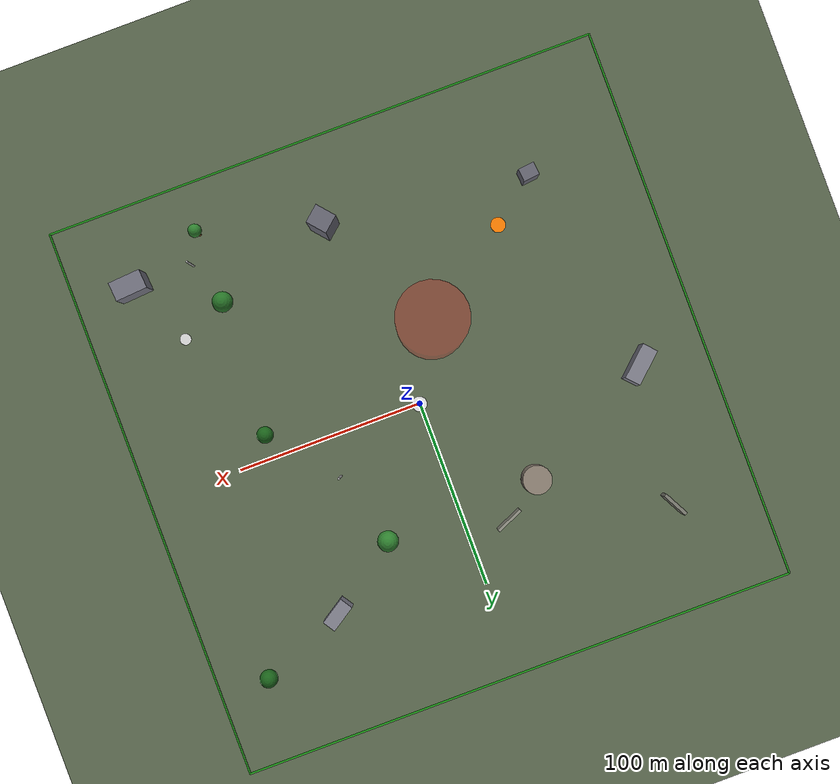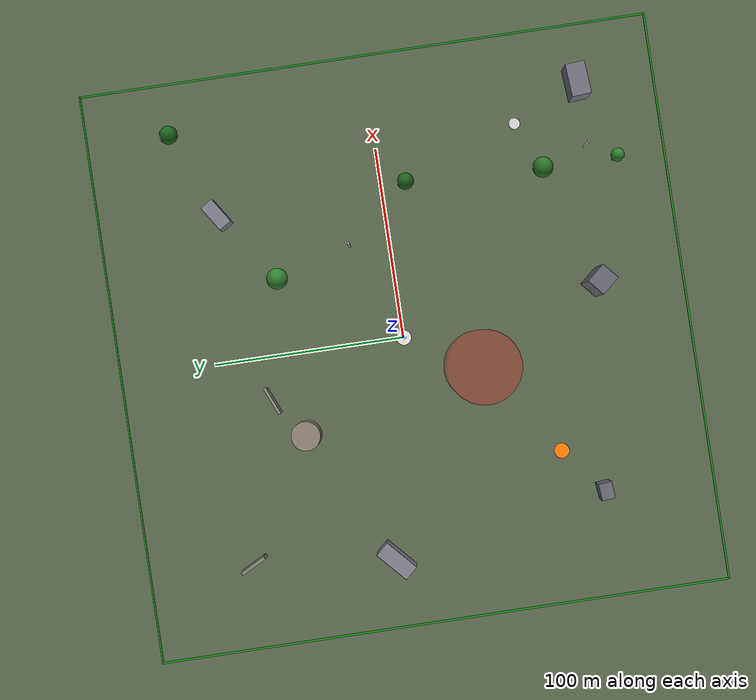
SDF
<?xml version="1.0" ?>
<sdf version="1.9">
  <!--
  Generated World: training_variant_001
  Seed: 43
  Difficulty: medium
  Obstacles: 15
  NFZs: 1
  Generated: 2025-12-27T10:39:35.526247
  Generator: Flyby F-11 World Generator v1.0.0
-->
  <world name="training_variant_001">
    <physics name="training_physics" type="ode">
      <max_step_size>0.001</max_step_size>
      <real_time_factor>1.0</real_time_factor>
      <real_time_update_rate>1000</real_time_update_rate>
      <ode>
        <solver>
          <type>quick</type>
          <iters>50</iters>
          <sor>1.3</sor>
        </solver>
        <constraints>
          <cfm>0.0</cfm>
          <erp>0.2</erp>
        </constraints>
      </ode>
    </physics>
    <plugin filename="gz-sim-physics-system" name="gz::sim::systems::Physics"/>
    <plugin filename="gz-sim-sensors-system" name="gz::sim::systems::Sensors">
      <render_engine>ogre2</render_engine>
    </plugin>
    <plugin filename="gz-sim-scene-broadcaster-system" name="gz::sim::systems::SceneBroadcaster"/>
    <plugin filename="gz-sim-user-commands-system" name="gz::sim::systems::UserCommands"/>
    <plugin filename="gz-sim-imu-system" name="gz::sim::systems::Imu"/>
    <plugin filename="gz-sim-air-pressure-system" name="gz::sim::systems::AirPressure"/>
    <plugin filename="gz-sim-magnetometer-system" name="gz::sim::systems::Magnetometer"/>
    <plugin filename="gz-sim-navsat-system" name="gz::sim::systems::NavSat"/>
    <plugin filename="gz-sim-contact-system" name="gz::sim::systems::Contact"/>
    <plugin filename="gz-sim-wind-effects-system" name="gz::sim::systems::WindEffects">
      <force_approximation_scaling_factor>1.0</force_approximation_scaling_factor>
    </plugin>
    <atmosphere type="adiabatic">
      <temperature>288.15</temperature>
      <pressure>101325</pressure>
      <mass_density>1.225</mass_density>
    </atmosphere>
    <wind>
      <linear_velocity>4.441189843562844 -0.8506739640705439 0</linear_velocity>
    </wind>
    <spherical_coordinates>
      <surface_model>EARTH_WGS84</surface_model>
      <world_frame_orientation>ENU</world_frame_orientation>
      <latitude_deg>33.3853</latitude_deg>
      <longitude_deg>-117.5653</longitude_deg>
      <elevation>100</elevation>
      <heading_deg>0</heading_deg>
    </spherical_coordinates>
    <scene>
      <ambient>0.4 0.35 0.35 1</ambient>
      <background>0.8 0.5 0.4 1</background>
      <shadows>true</shadows>
      <grid>false</grid>
    </scene>
    <light type="directional" name="sun">
      <cast_shadows>true</cast_shadows>
      <pose>0 0 100 0 0 0</pose>
      <diffuse>0.9 0.6 0.4 1</diffuse>
      <specular>0.2 0.1 0.1 1</specular>
      <attenuation>
        <range>1000</range>
        <constant>0.9</constant>
        <linear>0.01</linear>
        <quadratic>0.001</quadratic>
      </attenuation>
      <direction>-0.1 0.3 -0.3</direction>
    </light>
    <model name="ground_plane">
      <static>true</static>
      <link name="link">
        <collision name="collision">
          <geometry>
            <plane>
              <normal>0 0 1</normal>
              <size>500 500</size>
            </plane>
          </geometry>
          <surface>
            <friction>
              <ode>
                <mu>100</mu>
                <mu2>50</mu2>
              </ode>
            </friction>
          </surface>
        </collision>
        <visual name="visual">
          <geometry>
            <plane>
              <normal>0 0 1</normal>
              <size>500 500</size>
            </plane>
          </geometry>
          <material>
            <ambient>0.35 0.4 0.3 1</ambient>
            <diffuse>0.35 0.4 0.3 1</diffuse>
          </material>
        </visual>
      </link>
    </model>
    <model name="geofence_north">
      <static>true</static>
      <pose>0 150.0 1 0 0 0</pose>
      <link name="link">
        <visual name="visual">
          <geometry>
            <box>
              <size>300.0 0.5 2</size>
            </box>
          </geometry>
          <material>
            <ambient>0 0.8 0 0.6</ambient>
            <diffuse>0 0.8 0 0.6</diffuse>
            <emissive>0 0.2 0 1</emissive>
          </material>
        </visual>
      </link>
    </model>
    <model name="geofence_south">
      <static>true</static>
      <pose>0 -150.0 1 0 0 0</pose>
      <link name="link">
        <visual name="visual">
          <geometry>
            <box>
              <size>300.0 0.5 2</size>
            </box>
          </geometry>
          <material>
            <ambient>0 0.8 0 0.6</ambient>
            <diffuse>0 0.8 0 0.6</diffuse>
            <emissive>0 0.2 0 1</emissive>
          </material>
        </visual>
      </link>
    </model>
    <model name="geofence_east">
      <static>true</static>
      <pose>150.0 0 1 0 0 0</pose>
      <link name="link">
        <visual name="visual">
          <geometry>
            <box>
              <size>0.5 300.0 2</size>
            </box>
          </geometry>
          <material>
            <ambient>0 0.8 0 0.6</ambient>
            <diffuse>0 0.8 0 0.6</diffuse>
            <emissive>0 0.2 0 1</emissive>
          </material>
        </visual>
      </link>
    </model>
    <model name="geofence_west">
      <static>true</static>
      <pose>-150.0 0 1 0 0 0</pose>
      <link name="link">
        <visual name="visual">
          <geometry>
            <box>
              <size>0.5 300.0 2</size>
            </box>
          </geometry>
          <material>
            <ambient>0 0.8 0 0.6</ambient>
            <diffuse>0 0.8 0 0.6</diffuse>
            <emissive>0 0.2 0 1</emissive>
          </material>
        </visual>
      </link>
    </model>
    <model name="nfz_1_volume">
      <static>true</static>
      <pose>-20.485106862814575 -36.89388169723961 20.490195427352624 0 0 0</pose>
      <link name="link">
        <visual name="visual">
          <geometry>
            <cylinder>
              <radius>18.62708311302177</radius>
              <length>40.98039085470525</length>
            </cylinder>
          </geometry>
          <material>
            <ambient>1 0 0 0.25</ambient>
            <diffuse>1 0 0 0.25</diffuse>
          </material>
        </visual>
      </link>
    </model>
    <model name="obstacle_tree_0">
      <static>true</static>
      <pose>79.45565196014803 -12.696242450010942 0 0 0 0.0</pose>
      <link name="link">
        <visual name="trunk">
          <pose>0 0 5.014940292353301 0 0 0</pose>
          <geometry>
            <cylinder>
              <radius>0.5431799664186083</radius>
              <length>10.029880584706602</length>
            </cylinder>
          </geometry>
          <material>
            <ambient>0.42 0.27 0.12 1.0</ambient>
            <diffuse>0.42 0.27 0.12 1.0</diffuse>
          </material>
        </visual>
        <visual name="canopy">
          <pose>0 0 12.662438643398959 0 0 0</pose>
          <geometry>
            <sphere>
              <radius>4.387596764487263</radius>
            </sphere>
          </geometry>
          <material>
            <ambient>0.1 0.38 0.1 1.0</ambient>
            <diffuse>0.1 0.38 0.1 1.0</diffuse>
          </material>
        </visual>
        <collision name="collision">
          <pose>0 0 9.402537056840565 0 0 0</pose>
          <geometry>
            <cylinder>
              <radius>4.387596764487263</radius>
              <length>18.80507411368113</length>
            </cylinder>
          </geometry>
        </collision>
      </link>
    </model>
    <model name="obstacle_tree_1">
      <static>true</static>
      <pose>120.95901489345758 104.5660468445663 0 0 0 0.0</pose>
      <link name="link">
        <visual name="trunk">
          <pose>0 0 4.873529699123397 0 0 0</pose>
          <geometry>
            <cylinder>
              <radius>0.6542235615083326</radius>
              <length>9.747059398246794</length>
            </cylinder>
          </geometry>
          <material>
            <ambient>0.4 0.25 0.1 1.0</ambient>
            <diffuse>0.4 0.25 0.1 1.0</diffuse>
          </material>
        </visual>
        <visual name="canopy">
          <pose>0 0 12.584975774467038 0 0 0</pose>
          <geometry>
            <sphere>
              <radius>4.729860627033741</radius>
            </sphere>
          </geometry>
          <material>
            <ambient>0.1 0.38 0.1 1.0</ambient>
            <diffuse>0.1 0.38 0.1 1.0</diffuse>
          </material>
        </visual>
        <collision name="collision">
          <pose>0 0 9.603390326157138 0 0 0</pose>
          <geometry>
            <cylinder>
              <radius>4.729860627033741</radius>
              <length>19.206780652314276</length>
            </cylinder>
          </geometry>
        </collision>
      </link>
    </model>
    <model name="obstacle_building_2">
      <static>true</static>
      <pose>-94.01671455739128 -92.07749206749976 5.058690284898843 0 0 0.10108410353486122</pose>
      <link name="link">
        <visual name="visual">
          <geometry>
            <box>
              <size>8.692617343444399 6.965739200875013 10.117380569797685</size>
            </box>
          </geometry>
          <material>
            <ambient>0.4 0.4 0.45 1.0</ambient>
            <diffuse>0.4 0.4 0.45 1.0</diffuse>
          </material>
        </visual>
        <collision name="collision">
          <geometry>
            <box>
              <size>8.692617343444399 6.965739200875013 10.117380569797685</size>
            </box>
          </geometry>
        </collision>
      </link>
    </model>
    <model name="obstacle_building_3">
      <static>true</static>
      <pose>-113.5959555454755 20.630379561200783 5.545637322246016 0 0 0.7397693685057496</pose>
      <link name="link">
        <visual name="visual">
          <geometry>
            <box>
              <size>19.73840616703117 8.447424033108579 11.091274644492032</size>
            </box>
          </geometry>
          <material>
            <ambient>0.5 0.5 0.55 1.0</ambient>
            <diffuse>0.5 0.5 0.55 1.0</diffuse>
          </material>
        </visual>
        <collision name="collision">
          <geometry>
            <box>
              <size>19.73840616703117 8.447424033108579 11.091274644492032</size>
            </box>
          </geometry>
        </collision>
      </link>
    </model>
    <model name="obstacle_wall_4">
      <static>true</static>
      <pose>-105.41555763779496 94.45565392460196 4.566758184660719 0 0 2.054562385048423</pose>
      <link name="link">
        <visual name="visual">
          <geometry>
            <box>
              <size>14.44239675349884 1.8887522747892507 9.133516369321438</size>
            </box>
          </geometry>
          <material>
            <ambient>0.48 0.48 0.44 1.0</ambient>
            <diffuse>0.48 0.48 0.44 1.0</diffuse>
          </material>
        </visual>
        <collision name="collision">
          <geometry>
            <box>
              <size>14.44239675349884 1.8887522747892507 9.133516369321438</size>
            </box>
          </geometry>
        </collision>
      </link>
    </model>
    <model name="obstacle_tree_5">
      <static>true</static>
      <pose>39.571737927115976 60.0781181121919 0 0 0 0.0</pose>
      <link name="link">
        <visual name="trunk">
          <pose>0 0 4.372263233070511 0 0 0</pose>
          <geometry>
            <cylinder>
              <radius>0.5183117719607772</radius>
              <length>8.744526466141021</length>
            </cylinder>
          </geometry>
          <material>
            <ambient>0.42 0.27 0.12 1.0</ambient>
            <diffuse>0.42 0.27 0.12 1.0</diffuse>
          </material>
        </visual>
        <visual name="canopy">
          <pose>0 0 12.06515800388353 0 0 0</pose>
          <geometry>
            <sphere>
              <radius>5.534385896237515</radius>
            </sphere>
          </geometry>
          <material>
            <ambient>0.18 0.5 0.18 1.0</ambient>
            <diffuse>0.18 0.5 0.18 1.0</diffuse>
          </material>
        </visual>
        <collision name="collision">
          <pose>0 0 9.906649129308025 0 0 0</pose>
          <geometry>
            <cylinder>
              <radius>5.534385896237515</radius>
              <length>19.81329825861605</length>
            </cylinder>
          </geometry>
        </collision>
      </link>
    </model>
    <model name="obstacle_tree_6">
      <static>true</static>
      <pose>76.6759649976548 -122.82304179207726 0 0 0 0.0</pose>
      <link name="link">
        <visual name="trunk">
          <pose>0 0 5.545079136196184 0 0 0</pose>
          <geometry>
            <cylinder>
              <radius>0.7103465432795643</radius>
              <length>11.090158272392369</length>
            </cylinder>
          </geometry>
          <material>
            <ambient>0.4 0.25 0.1 1.0</ambient>
            <diffuse>0.4 0.25 0.1 1.0</diffuse>
          </material>
        </visual>
        <visual name="canopy">
          <pose>0 0 13.190431238027791 0 0 0</pose>
          <geometry>
            <sphere>
              <radius>3.500454942725704</radius>
            </sphere>
          </geometry>
          <material>
            <ambient>0.18 0.5 0.18 1.0</ambient>
            <diffuse>0.18 0.5 0.18 1.0</diffuse>
          </material>
        </visual>
        <collision name="collision">
          <pose>0 0 9.04553407892189 0 0 0</pose>
          <geometry>
            <cylinder>
              <radius>3.500454942725704</radius>
              <length>18.09106815784378</length>
            </cylinder>
          </geometry>
        </collision>
      </link>
    </model>
    <model name="obstacle_building_7">
      <static>true</static>
      <pose>13.956999054461647 -103.85152532808249 12.237982779319989 0 0 0.7063607768978037</pose>
      <link name="link">
        <visual name="visual">
          <geometry>
            <box>
              <size>10.232095867861673 11.440323275574745 24.475965558639977</size>
            </box>
          </geometry>
          <material>
            <ambient>0.4 0.4 0.45 1.0</ambient>
            <diffuse>0.4 0.4 0.45 1.0</diffuse>
          </material>
        </visual>
        <collision name="collision">
          <geometry>
            <box>
              <size>10.232095867861673 11.440323275574745 24.475965558639977</size>
            </box>
          </geometry>
        </collision>
      </link>
    </model>
    <model name="obstacle_wall_8">
      <static>true</static>
      <pose>-22.509028625043328 72.40270133878235 4.419188506153709 0 0 0.399474654544396</pose>
      <link name="link">
        <visual name="visual">
          <geometry>
            <box>
              <size>15.42357903516048 1.4339933994512484 8.838377012307419</size>
            </box>
          </geometry>
          <material>
            <ambient>0.55 0.55 0.5 1.0</ambient>
            <diffuse>0.55 0.55 0.5 1.0</diffuse>
          </material>
        </visual>
        <collision name="collision">
          <geometry>
            <box>
              <size>15.42357903516048 1.4339933994512484 8.838377012307419</size>
            </box>
          </geometry>
        </collision>
      </link>
    </model>
    <model name="obstacle_pole_9">
      <static>true</static>
      <pose>85.47710399768289 -108.71534012532851 8.270522600937282 0 0 0.0</pose>
      <link name="link">
        <visual name="visual">
          <geometry>
            <cylinder>
              <radius>0.49944107099872437</radius>
              <length>16.541045201874564</length>
            </cylinder>
          </geometry>
          <material>
            <ambient>0.75 0.75 0.75 1.0</ambient>
            <diffuse>0.75 0.75 0.75 1.0</diffuse>
          </material>
        </visual>
        <collision name="collision">
          <geometry>
            <cylinder>
              <radius>0.49944107099872437</radius>
              <length>16.541045201874564</length>
            </cylinder>
          </geometry>
        </collision>
      </link>
    </model>
    <model name="obstacle_building_10">
      <static>true</static>
      <pose>77.21972219541044 86.92917897752966 4.898926434516959 0 0 0.5769461998133796</pose>
      <link name="link">
        <visual name="visual">
          <geometry>
            <box>
              <size>15.045695665893616 7.3191061692139145 9.797852869033918</size>
            </box>
          </geometry>
          <material>
            <ambient>0.5 0.5 0.55 1.0</ambient>
            <diffuse>0.5 0.5 0.55 1.0</diffuse>
          </material>
        </visual>
        <collision name="collision">
          <geometry>
            <box>
              <size>15.045695665893616 7.3191061692139145 9.797852869033918</size>
            </box>
          </geometry>
        </collision>
      </link>
    </model>
    <model name="obstacle_tank_11">
      <static>true</static>
      <pose>-42.98769768584302 57.52884610623232 5.655116977854892 0 0 0.0</pose>
      <link name="link">
        <visual name="visual">
          <geometry>
            <cylinder>
              <radius>7.61527221863599</radius>
              <length>11.310233955709784</length>
            </cylinder>
          </geometry>
          <material>
            <ambient>0.55 0.5 0.45 1.0</ambient>
            <diffuse>0.55 0.5 0.45 1.0</diffuse>
          </material>
        </visual>
        <collision name="collision">
          <geometry>
            <cylinder>
              <radius>7.61527221863599</radius>
              <length>11.310233955709784</length>
            </cylinder>
          </geometry>
        </collision>
      </link>
    </model>
    <model name="obstacle_building_12">
      <static>true</static>
      <pose>118.38704917089666 -108.55943955200254 6.890097169475981 0 0 0.07300509352067404</pose>
      <link name="link">
        <visual name="visual">
          <geometry>
            <box>
              <size>17.050857517393183 10.106110487827387 13.780194338951961</size>
            </box>
          </geometry>
          <material>
            <ambient>0.45 0.45 0.5 1.0</ambient>
            <diffuse>0.45 0.45 0.5 1.0</diffuse>
          </material>
        </visual>
        <collision name="collision">
          <geometry>
            <box>
              <size>17.050857517393183 10.106110487827387 13.780194338951961</size>
            </box>
          </geometry>
        </collision>
      </link>
    </model>
    <model name="obstacle_pole_13">
      <static>true</static>
      <pose>51.383156751501076 21.000887875514906 9.5233013553168 0 0 0.0</pose>
      <link name="link">
        <visual name="visual">
          <geometry>
            <cylinder>
              <radius>0.5809714831537842</radius>
              <length>19.0466027106336</length>
            </cylinder>
          </geometry>
          <material>
            <ambient>0.7 0.7 0.7 1.0</ambient>
            <diffuse>0.7 0.7 0.7 1.0</diffuse>
          </material>
        </visual>
        <collision name="collision">
          <geometry>
            <cylinder>
              <radius>0.5809714831537842</radius>
              <length>19.0466027106336</length>
            </cylinder>
          </geometry>
        </collision>
      </link>
    </model>
    <model name="obstacle_tree_14">
      <static>true</static>
      <pose>76.24746380513704 -84.05598056976945 0 0 0 0.0</pose>
      <link name="link">
        <visual name="trunk">
          <pose>0 0 4.1937341618611725 0 0 0</pose>
          <geometry>
            <cylinder>
              <radius>0.6226108124385485</radius>
              <length>8.387468323722345</length>
            </cylinder>
          </geometry>
          <material>
            <ambient>0.42 0.27 0.12 1.0</ambient>
            <diffuse>0.42 0.27 0.12 1.0</diffuse>
          </material>
        </visual>
        <visual name="canopy">
          <pose>0 0 11.62830658012041 0 0 0</pose>
          <geometry>
            <sphere>
              <radius>5.401397093996775</radius>
            </sphere>
          </geometry>
          <material>
            <ambient>0.15 0.45 0.15 1.0</ambient>
            <diffuse>0.15 0.45 0.15 1.0</diffuse>
          </material>
        </visual>
        <collision name="collision">
          <pose>0 0 9.595131255857947 0 0 0</pose>
          <geometry>
            <cylinder>
              <radius>5.401397093996775</radius>
              <length>19.190262511715893</length>
            </cylinder>
          </geometry>
        </collision>
      </link>
    </model>
    <model name="lz_primary">
      <static>true</static>
      <pose>0 0 0.02 0 0 0</pose>
      <link name="link">
        <visual name="pad">
          <geometry>
            <cylinder>
              <radius>4.0</radius>
              <length>0.04</length>
            </cylinder>
          </geometry>
          <material>
            <ambient>0.9 0.9 0.9 1</ambient>
            <diffuse>0.9 0.9 0.9 1</diffuse>
          </material>
        </visual>
        <visual name="H_v">
          <pose>0 0 0.02 0 0 0</pose>
          <geometry>
            <box>
              <size>0.6 2.5 0.01</size>
            </box>
          </geometry>
          <material>
            <ambient>0 0 0.8 1</ambient>
            <diffuse>0 0 0.8 1</diffuse>
          </material>
        </visual>
        <visual name="H_h">
          <pose>0 0 0.02 0 0 0</pose>
          <geometry>
            <box>
              <size>2.5 0.6 0.01</size>
            </box>
          </geometry>
          <material>
            <ambient>0 0 0.8 1</ambient>
            <diffuse>0 0 0.8 1</diffuse>
          </material>
        </visual>
      </link>
    </model>
    <model name="lz_secondary">
      <static>true</static>
      <pose>102.84129880350142 -74.28946643719297 0.02 0 0 0</pose>
      <link name="link">
        <visual name="pad">
          <geometry>
            <cylinder>
              <radius>3.0</radius>
              <length>0.04</length>
            </cylinder>
          </geometry>
          <material>
            <ambient>0.85 0.85 0.85 1</ambient>
            <diffuse>0.85 0.85 0.85 1</diffuse>
          </material>
        </visual>
      </link>
    </model>
    <model name="lz_emergency">
      <static>true</static>
      <pose>-71.0585211007191 -73.40603479244996 0.02 0 0 0</pose>
      <link name="link">
        <visual name="pad">
          <geometry>
            <cylinder>
              <radius>4.0</radius>
              <length>0.04</length>
            </cylinder>
          </geometry>
          <material>
            <ambient>1 0.5 0 1</ambient>
            <diffuse>1 0.5 0 1</diffuse>
          </material>
        </visual>
      </link>
    </model>
    <include>
      <uri>model://iris_with_ardupilot</uri>
      <name>iris</name>
      <pose>0 0 0.5 0 0 0</pose>
    </include>
  </world>
</sdf>

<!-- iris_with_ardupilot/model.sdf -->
<sdf version="1.9">
  <model name="iris_with_ardupilot">
    <pose>0 0 0.2 0 0 0</pose>

    <link name="base_link">
      <inertial>
        <mass>1.5</mass>
        <inertia>
          <ixx>0.029125</ixx>
          <ixy>0</ixy>
          <ixz>0</ixz>
          <iyy>0.029125</iyy>
          <iyz>0</iyz>
          <izz>0.055225</izz>
        </inertia>
      </inertial>

      <visual name="body_visual">
        <geometry>
          <box>
            <size>0.47 0.47 0.11</size>
          </box>
        </geometry>
        <material>
          <ambient>0.2 0.2 0.2 1</ambient>
          <diffuse>0.2 0.2 0.2 1</diffuse>
        </material>
      </visual>

      <!-- Center marker for orientation (green = forward) -->
      <visual name="center_marker">
        <pose>0.15 0 0 0 0 0</pose>
        <geometry>
          <sphere>
            <radius>0.05</radius>
          </sphere>
        </geometry>
        <material>
          <ambient>0 1 0 1</ambient>
          <diffuse>0 1 0 1</diffuse>
        </material>
      </visual>

      <collision name="collision">
        <geometry>
          <box>
            <size>0.47 0.47 0.11</size>
          </box>
        </geometry>
      </collision>

      <!-- GPS/NavSat Sensor                -->
      <!-- Consumer-grade GPS accuracy      -->
      <sensor name="navsat_sensor" type="navsat">
        <always_on>1</always_on>
        <update_rate>10</update_rate>
        <topic>gps</topic>
        <navsat>
          <position_sensing>
            <horizontal>
              <noise type="gaussian">
                <mean>0.0</mean>
                <stddev>0.5</stddev>
              </noise>
            </horizontal>
            <vertical>
              <noise type="gaussian">
                <mean>0.0</mean>
                <stddev>1.0</stddev>
              </noise>
            </vertical>
          </position_sensing>
          <velocity_sensing>
            <horizontal>
              <noise type="gaussian">
                <mean>0.0</mean>
                <stddev>0.05</stddev>
              </noise>
            </horizontal>
            <vertical>
              <noise type="gaussian">
                <mean>0.0</mean>
                <stddev>0.1</stddev>
              </noise>
            </vertical>
          </velocity_sensing>
        </navsat>
      </sensor>

      <!-- Magnetometer Sensor              -->
      <!-- Earth magnetic field sensing     -->
      <!-- Declination: ~11.5 deg E (San Diego) -->
      <sensor name="magnetometer_sensor" type="magnetometer">
        <always_on>1</always_on>
        <update_rate>50</update_rate>
        <topic>magnetometer</topic>
        <magnetometer>
          <x>
            <noise type="gaussian">
              <mean>0</mean>
              <stddev>0.001</stddev>
              <bias_mean>0.00001</bias_mean>
              <bias_stddev>0.000002</bias_stddev>
            </noise>
          </x>
          <y>
            <noise type="gaussian">
              <mean>0</mean>
              <stddev>0.001</stddev>
              <bias_mean>0.00001</bias_mean>
              <bias_stddev>0.000002</bias_stddev>
            </noise>
          </y>
          <z>
            <noise type="gaussian">
              <mean>0</mean>
              <stddev>0.001</stddev>
              <bias_mean>0.00001</bias_mean>
              <bias_stddev>0.000002</bias_stddev>
            </noise>
          </z>
        </magnetometer>
      </sensor>

      <!-- Barometer Sensor                 -->
      <!-- Atmospheric pressure sensing     -->
      <!-- ~8.3 Pa per meter at sea level   -->
      <sensor name="air_pressure_sensor" type="air_pressure">
        <always_on>1</always_on>
        <update_rate>20</update_rate>
        <topic>air_pressure</topic>
        <air_pressure>
          <reference_altitude>0</reference_altitude>
          <pressure>
            <noise type="gaussian">
              <mean>0</mean>
              <stddev>10</stddev>
            </noise>
          </pressure>
        </air_pressure>
      </sensor>

    </link>

    <!-- Rotor 0 (Front Right, CW)        -->
    <link name="rotor_0">
      <pose>0.13 -0.22 0.023 0 0 0</pose>
      <inertial>
        <mass>0.005</mass>
        <inertia>
          <ixx>9.75e-07</ixx>
          <ixy>0</ixy>
          <ixz>0</ixz>
          <iyy>0.000166704</iyy>
          <iyz>0</iyz>
          <izz>0.000167604</izz>
        </inertia>
      </inertial>
      <visual name="visual">
        <geometry>
          <cylinder>
            <radius>0.128</radius>
            <length>0.005</length>
          </cylinder>
        </geometry>
        <material>
          <ambient>1 0 0 1</ambient>
          <diffuse>1 0 0 1</diffuse>
        </material>
      </visual>
    </link>

    <!-- Rotor 1 (Back Left, CW)          -->
    <link name="rotor_1">
      <pose>-0.13 0.2 0.023 0 0 0</pose>
      <inertial>
        <mass>0.005</mass>
        <inertia>
          <ixx>9.75e-07</ixx>
          <ixy>0</ixy>
          <ixz>0</ixz>
          <iyy>0.000166704</iyy>
          <iyz>0</iyz>
          <izz>0.000167604</izz>
        </inertia>
      </inertial>
      <visual name="visual">
        <geometry>
          <cylinder>
            <radius>0.128</radius>
            <length>0.005</length>
          </cylinder>
        </geometry>
        <material>
          <ambient>1 0 0 1</ambient>
          <diffuse>1 0 0 1</diffuse>
        </material>
      </visual>
    </link>

    <!-- Rotor 2 (Front Left, CCW)        -->
    <link name="rotor_2">
      <pose>0.13 0.22 0.023 0 0 0</pose>
      <inertial>
        <mass>0.005</mass>
        <inertia>
          <ixx>9.75e-07</ixx>
          <ixy>0</ixy>
          <ixz>0</ixz>
          <iyy>0.000166704</iyy>
          <iyz>0</iyz>
          <izz>0.000167604</izz>
        </inertia>
      </inertial>
      <visual name="visual">
        <geometry>
          <cylinder>
            <radius>0.128</radius>
            <length>0.005</length>
          </cylinder>
        </geometry>
        <material>
          <ambient>0 0 1 1</ambient>
          <diffuse>0 0 1 1</diffuse>
        </material>
      </visual>
    </link>

    <!-- Rotor 3 (Back Right, CCW)        -->
    <link name="rotor_3">
      <pose>-0.13 -0.2 0.023 0 0 0</pose>
      <inertial>
        <mass>0.005</mass>
        <inertia>
          <ixx>9.75e-07</ixx>
          <ixy>0</ixy>
          <ixz>0</ixz>
          <iyy>0.000166704</iyy>
          <iyz>0</iyz>
          <izz>0.000167604</izz>
        </inertia>
      </inertial>
      <visual name="visual">
        <geometry>
          <cylinder>
            <radius>0.128</radius>
            <length>0.005</length>
          </cylinder>
        </geometry>
        <material>
          <ambient>0 0 1 1</ambient>
          <diffuse>0 0 1 1</diffuse>
        </material>
      </visual>
    </link>

    <!-- Rotor joints -->
    <joint name="rotor_0_joint" type="revolute">
      <parent>base_link</parent>
      <child>rotor_0</child>
      <axis>
        <xyz>0 0 1</xyz>
        <limit>
          <lower>-1e16</lower>
          <upper>1e16</upper>
        </limit>
      </axis>
    </joint>

    <joint name="rotor_1_joint" type="revolute">
      <parent>base_link</parent>
      <child>rotor_1</child>
      <axis>
        <xyz>0 0 1</xyz>
        <limit>
          <lower>-1e16</lower>
          <upper>1e16</upper>
        </limit>
      </axis>
    </joint>

    <joint name="rotor_2_joint" type="revolute">
      <parent>base_link</parent>
      <child>rotor_2</child>
      <axis>
        <xyz>0 0 1</xyz>
        <limit>
          <lower>-1e16</lower>
          <upper>1e16</upper>
        </limit>
      </axis>
    </joint>

    <joint name="rotor_3_joint" type="revolute">
      <parent>base_link</parent>
      <child>rotor_3</child>
      <axis>
        <xyz>0 0 1</xyz>
        <limit>
          <lower>-1e16</lower>
          <upper>1e16</upper>
        </limit>
      </axis>
    </joint>

    <!-- IMU Sensor Link                  -->
    <!-- 250Hz MEMS IMU with noise        -->
    <link name="imu_link">
      <pose>0 0 0 0 0 0</pose>
      <inertial>
        <mass>0.001</mass>
        <inertia>
          <ixx>1e-05</ixx>
          <ixy>0</ixy>
          <ixz>0</ixz>
          <iyy>1e-05</iyy>
          <iyz>0</iyz>
          <izz>1e-05</izz>
        </inertia>
      </inertial>
      <sensor name="imu_sensor" type="imu">
        <always_on>1</always_on>
        <update_rate>250</update_rate>
        <topic>imu</topic>
        <imu>
          <angular_velocity>
            <x>
              <noise type="gaussian">
                <mean>0</mean>
                <stddev>0.009</stddev>
                <bias_mean>0.0001</bias_mean>
                <bias_stddev>0.00002</bias_stddev>
              </noise>
            </x>
            <y>
              <noise type="gaussian">
                <mean>0</mean>
                <stddev>0.009</stddev>
                <bias_mean>0.0001</bias_mean>
                <bias_stddev>0.00002</bias_stddev>
              </noise>
            </y>
            <z>
              <noise type="gaussian">
                <mean>0</mean>
                <stddev>0.009</stddev>
                <bias_mean>0.0001</bias_mean>
                <bias_stddev>0.00002</bias_stddev>
              </noise>
            </z>
          </angular_velocity>
          <linear_acceleration>
            <x>
              <noise type="gaussian">
                <mean>0</mean>
                <stddev>0.017</stddev>
                <bias_mean>0.001</bias_mean>
                <bias_stddev>0.0002</bias_stddev>
              </noise>
            </x>
            <y>
              <noise type="gaussian">
                <mean>0</mean>
                <stddev>0.017</stddev>
                <bias_mean>0.001</bias_mean>
                <bias_stddev>0.0002</bias_stddev>
              </noise>
            </y>
            <z>
              <noise type="gaussian">
                <mean>0</mean>
                <stddev>0.017</stddev>
                <bias_mean>0.001</bias_mean>
                <bias_stddev>0.0002</bias_stddev>
              </noise>
            </z>
          </linear_acceleration>
        </imu>
      </sensor>
    </link>

    <joint name="imu_joint" type="fixed">
      <parent>base_link</parent>
      <child>imu_link</child>
    </joint>

    <!-- Rangefinder Link                 -->
    <!-- Downward-facing lidar for AGL    -->
    <link name="rangefinder_link">
      <pose>0 0 -0.05 0 0 0</pose>
      <inertial>
        <mass>0.01</mass>
        <inertia>
          <ixx>1e-05</ixx>
          <ixy>0</ixy>
          <ixz>0</ixz>
          <iyy>1e-05</iyy>
          <iyz>0</iyz>
          <izz>1e-05</izz>
        </inertia>
      </inertial>
      <visual name="visual">
        <geometry>
          <cylinder>
            <radius>0.01</radius>
            <length>0.02</length>
          </cylinder>
        </geometry>
        <material>
          <ambient>0.5 0.5 0.5 1</ambient>
          <diffuse>0.5 0.5 0.5 1</diffuse>
        </material>
      </visual>
      <sensor name="rangefinder" type="gpu_lidar">
        <!-- Pointing straight down (pitch = -90 deg = -1.5708 rad) -->
        <pose>0 0 0 0 1.5708 0</pose>
        <always_on>1</always_on>
        <update_rate>20</update_rate>
        <topic>rangefinder</topic>
        <ray>
          <scan>
            <horizontal>
              <samples>1</samples>
              <resolution>1</resolution>
              <min_angle>0</min_angle>
              <max_angle>0</max_angle>
            </horizontal>
            <vertical>
              <samples>1</samples>
              <resolution>1</resolution>
              <min_angle>0</min_angle>
              <max_angle>0</max_angle>
            </vertical>
          </scan>
          <range>
            <min>0.1</min>
            <max>40.0</max>
            <resolution>0.01</resolution>
          </range>
          <noise>
            <type>gaussian</type>
            <mean>0</mean>
            <stddev>0.02</stddev>
          </noise>
        </ray>
        <visualize>false</visualize>
      </sensor>
    </link>

    <joint name="rangefinder_joint" type="fixed">
      <parent>base_link</parent>
      <child>rangefinder_link</child>
    </joint>

    <!-- ArduPilot Plugin                 -->
    <plugin filename="ArduPilotPlugin" name="ArduPilotPlugin">
      <!-- Network Configuration -->
      <fdm_addr>127.0.0.1</fdm_addr>
      <fdm_port_in>9002</fdm_port_in>
      <fdm_port_out>9003</fdm_port_out>
      <connectionTimeoutMaxCount>5</connectionTimeoutMaxCount>

      <!-- Simulation Settings -->
      <lock_step>1</lock_step>
      <have_32_channels>0</have_32_channels>

      <!-- Coordinate Transforms -->
      <modelXYZToAirplaneXForwardZDown>0 0 0 3.141593 0 0</modelXYZToAirplaneXForwardZDown>
      <gazeboXYZToNED>0 0 0 3.141593 0 0</gazeboXYZToNED>

      <!-- Sensor Reference -->
      <imuName>imu_link::imu_sensor</imuName>

      <!-- Control Channel 0: Front Right (CW) -->
      <control channel="0">
        <jointName>rotor_0_joint</jointName>
        <useForce>1</useForce>
        <multiplier>838</multiplier>
        <offset>-0.5</offset>
        <servo_min>1000</servo_min>
        <servo_max>2000</servo_max>
        <type>VELOCITY</type>
        <p_gain>0.20</p_gain>
        <i_gain>0</i_gain>
        <d_gain>0</d_gain>
        <i_max>0</i_max>
        <i_min>0</i_min>
        <cmd_max>2.5</cmd_max>
        <cmd_min>-2.5</cmd_min>
      </control>

      <!-- Control Channel 1: Back Left (CW) -->
      <control channel="1">
        <jointName>rotor_1_joint</jointName>
        <useForce>1</useForce>
        <multiplier>838</multiplier>
        <offset>-0.5</offset>
        <servo_min>1000</servo_min>
        <servo_max>2000</servo_max>
        <type>VELOCITY</type>
        <p_gain>0.20</p_gain>
        <i_gain>0</i_gain>
        <d_gain>0</d_gain>
        <i_max>0</i_max>
        <i_min>0</i_min>
        <cmd_max>2.5</cmd_max>
        <cmd_min>-2.5</cmd_min>
      </control>

      <!-- Control Channel 2: Front Left (CCW) -->
      <control channel="2">
        <jointName>rotor_2_joint</jointName>
        <useForce>1</useForce>
        <multiplier>838</multiplier>
        <offset>-0.5</offset>
        <servo_min>1000</servo_min>
        <servo_max>2000</servo_max>
        <type>VELOCITY</type>
        <p_gain>0.20</p_gain>
        <i_gain>0</i_gain>
        <d_gain>0</d_gain>
        <i_max>0</i_max>
        <i_min>0</i_min>
        <cmd_max>2.5</cmd_max>
        <cmd_min>-2.5</cmd_min>
      </control>

      <!-- Control Channel 3: Back Right (CCW) -->
      <control channel="3">
        <jointName>rotor_3_joint</jointName>
        <useForce>1</useForce>
        <multiplier>838</multiplier>
        <offset>-0.5</offset>
        <servo_min>1000</servo_min>
        <servo_max>2000</servo_max>
        <type>VELOCITY</type>
        <p_gain>0.20</p_gain>
        <i_gain>0</i_gain>
        <d_gain>0</d_gain>
        <i_max>0</i_max>
        <i_min>0</i_min>
        <cmd_max>2.5</cmd_max>
        <cmd_min>-2.5</cmd_min>
      </control>
    </plugin>

  </model>
</sdf>
